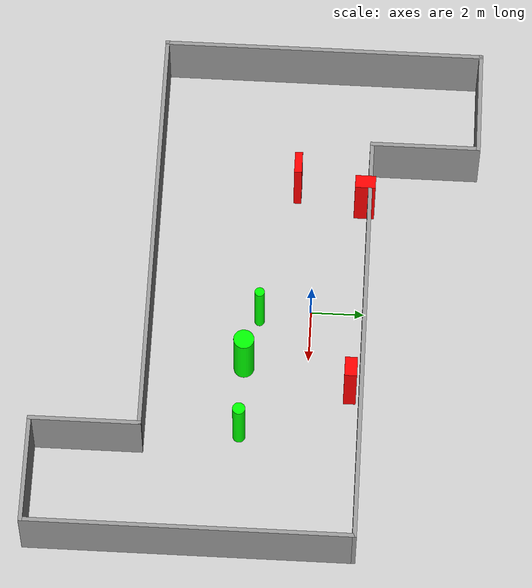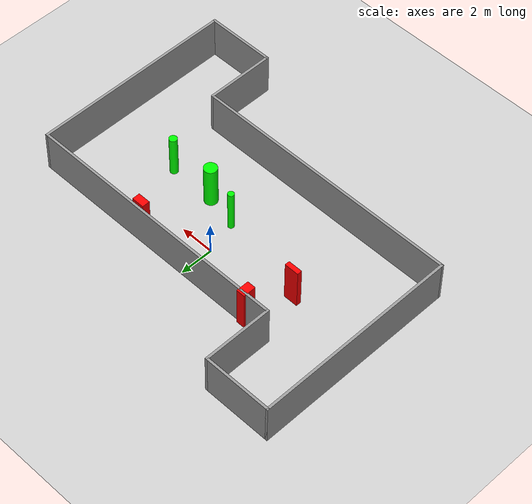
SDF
<sdf version="1.7">
 <world name="default">
  <light name="sun" type="directional">
   <pose>0 0 10 0 -0 0</pose>
   <diffuse>0.8 0.8 0.8 1</diffuse>
   <specular>0.2 0.2 0.2 1</specular>
   <attenuation>
    <range>1000</range>
    <constant>0.9</constant>
    <linear>0.01</linear>
    <quadratic>0.001</quadratic>
   </attenuation>
   <direction>-0.5 0.1 -0.9</direction>
   <spot><inner_angle>0</inner_angle><outer_angle>0</outer_angle><falloff>0</falloff></spot>
  </light>
  <model name="ground_plane">
   <static>1</static>
   <link name="link">
    <collision name="collision">
     <geometry><plane><normal>0 0 1</normal><size>100 100</size></plane></geometry>
     <surface>
      <contact><collide_bitmask>65535</collide_bitmask></contact>
      <friction><ode><mu>100</mu><mu2>50</mu2></ode></friction>
     </surface>
    </collision>
    <visual name="visual">
     <cast_shadows>0</cast_shadows>
     <geometry><plane><normal>0 0 1</normal><size>100 100</size></plane></geometry>
     <material>
      <script><uri>file://media/materials/scripts/gazebo.material</uri><name>Gazebo/Grey</name></script>
     </material>
    </visual>
   </link>
  </model>
  <gravity>0 0 -9.8</gravity>
  <magnetic_field>6e-06 2.3e-05 -4.2e-05</magnetic_field>
  <atmosphere type="adiabatic"/>
  <physics type="ode">
   <max_step_size>0.001</max_step_size>
   <real_time_factor>1</real_time_factor>
   <real_time_update_rate>1000</real_time_update_rate>
  </physics>
  <scene><ambient>0.4 0.4 0.4 1</ambient><background>0.7 0.7 0.7 1</background><shadows>1</shadows></scene>
  <spherical_coordinates>
   <surface_model>EARTH_WGS84</surface_model>
   <latitude_deg>0</latitude_deg>
   <longitude_deg>0</longitude_deg>
   <elevation>0</elevation>
   <heading_deg>0</heading_deg>
  </spherical_coordinates>
  <model name="my_base_walls">
   <link name="Wall_13">
    <collision name="Wall_13_Collision">
     <geometry><box><size>12.15 0.15 2.5</size></box></geometry>
     <pose>0 0 1.25 0 -0 0</pose>
    </collision>
    <visual name="Wall_13_Visual">
     <pose>0 0 1.25 0 -0 0</pose>
     <geometry><box><size>12.15 0.15 2.5</size></box></geometry>
     <material>
      <script><uri>file://media/materials/scripts/gazebo.material</uri><name>Gazebo/Grey</name></script>
      <ambient>1 1 1 1</ambient>
     </material>
     <meta><layer>0</layer></meta>
    </visual>
    <pose>10 -2 0 0 -0 1.5708</pose>
   </link>
   <link name="Wall_15">
    <collision name="Wall_15_Collision">
     <geometry><box><size>16.15 0.15 2.5</size></box></geometry>
     <pose>0 0 1.25 0 -0 0</pose>
    </collision>
    <visual name="Wall_15_Visual">
     <pose>0 0 1.25 0 -0 0</pose>
     <geometry><box><size>16.15 0.15 2.5</size></box></geometry>
     <material>
      <script><uri>file://media/materials/scripts/gazebo.material</uri><name>Gazebo/Grey</name></script>
      <ambient>1 1 1 1</ambient>
     </material>
     <meta><layer>0</layer></meta>
    </visual>
    <pose>2 4 0 0 -0 3.14159</pose>
   </link>
   <link name="Wall_17">
    <collision name="Wall_17_Collision">
     <geometry><box><size>4.15 0.15 2.5</size></box></geometry>
     <pose>0 0 1.25 0 -0 0</pose>
    </collision>
    <visual name="Wall_17_Visual">
     <pose>0 0 1.25 0 -0 0</pose>
     <geometry><box><size>4.15 0.15 2.5</size></box></geometry>
     <material>
      <script><uri>file://media/materials/scripts/gazebo.material</uri><name>Gazebo/Grey</name></script>
      <ambient>1 1 1 1</ambient>
     </material>
     <meta><layer>0</layer></meta>
    </visual>
    <pose>6 -6 0 0 -0 -1.5708</pose>
   </link>
   <link name="Wall_19">
    <collision name="Wall_19_Collision">
     <geometry><box><size>12.15 0.15 2.5</size></box></geometry>
     <pose>0 0 1.25 0 -0 0</pose>
    </collision>
    <visual name="Wall_19_Visual">
     <pose>0 0 1.25 0 -0 0</pose>
     <geometry><box><size>12.15 0.15 2.5</size></box></geometry>
     <material>
      <script><uri>file://media/materials/scripts/gazebo.material</uri><name>Gazebo/Grey</name></script>
      <ambient>1 1 1 1</ambient>
     </material>
     <meta><layer>0</layer></meta>
    </visual>
    <pose>-10 2 0 0 -0 1.5708</pose>
   </link>
   <link name="Wall_21">
    <collision name="Wall_21_Collision">
     <geometry><box><size>4.15 0.15 2.5</size></box></geometry>
     <pose>0 0 1.25 0 -0 0</pose>
    </collision>
    <visual name="Wall_21_Visual">
     <pose>0 0 1.25 0 -0 0</pose>
     <geometry><box><size>4.15 0.15 2.5</size></box></geometry>
     <material>
      <script><uri>file://media/materials/scripts/gazebo.material</uri><name>Gazebo/Grey</name></script>
      <ambient>1 1 1 1</ambient>
     </material>
     <meta><layer>0</layer></meta>
    </visual>
    <pose>-8 8 0 0 -0 0</pose>
   </link>
   <link name="Wall_23">
    <collision name="Wall_23_Collision">
     <geometry><box><size>4.15 0.15 2.5</size></box></geometry>
     <pose>0 0 1.25 0 -0 0</pose>
    </collision>
    <visual name="Wall_23_Visual">
     <pose>0 0 1.25 0 -0 0</pose>
     <geometry><box><size>4.15 0.15 2.5</size></box></geometry>
     <material>
      <script><uri>file://media/materials/scripts/gazebo.material</uri><name>Gazebo/Grey</name></script>
      <ambient>1 1 1 1</ambient>
     </material>
     <meta><layer>0</layer></meta>
    </visual>
    <pose>-6 6 0 0 -0 -1.5708</pose>
   </link>
   <link name="Wall_25">
    <collision name="Wall_25_Collision">
     <geometry><box><size>4.15 0.15 2.5</size></box></geometry>
     <pose>0 0 1.25 0 -0 0</pose>
    </collision>
    <visual name="Wall_25_Visual">
     <pose>0 0 1.25 0 -0 0</pose>
     <geometry><box><size>4.15 0.15 2.5</size></box></geometry>
     <material>
      <script><uri>file://media/materials/scripts/gazebo.material</uri><name>Gazebo/Grey</name></script>
      <ambient>1 1 1 1</ambient>
     </material>
     <meta><layer>0</layer></meta>
    </visual>
    <pose>8 -8 0 0 -0 0</pose>
   </link>
   <link name="Wall_9">
    <collision name="Wall_9_Collision">
     <geometry><box><size>16.15 0.15 2.5</size></box></geometry>
     <pose>0 0 1.25 0 -0 0</pose>
    </collision>
    <visual name="Wall_9_Visual">
     <pose>0 0 1.25 0 -0 0</pose>
     <geometry><box><size>16.15 0.15 2.5</size></box></geometry>
     <material>
      <script><uri>file://media/materials/scripts/gazebo.material</uri><name>Gazebo/Grey</name></script>
      <ambient>1 1 1 1</ambient>
     </material>
     <meta><layer>0</layer></meta>
    </visual>
    <pose>-2 -4 0 0 -0 3.14159</pose>
   </link>
   <static>1</static>
   <pose>-0 -2 0 0 -0 0</pose>
  </model>
  <model name="cylinder1">
   <static>1</static>
   <link name="link">
    <inertial>
     <mass>1</mass>
     <inertia><ixx>0.5</ixx><ixy>0</ixy><ixz>0</ixz><iyy>0.5</iyy><iyz>0</iyz><izz>1</izz></inertia>
    </inertial>
    <collision name="collision">
     <geometry><cylinder><radius>0.18345576652114293</radius><length>2.5</length></cylinder></geometry>
    </collision>
    <visual name="visual">
     <geometry><cylinder><radius>0.18345576652114293</radius><length>2.5</length></cylinder></geometry>
     <material>
      <ambient>0 1 0 1</ambient>
      <diffuse>0 1 0 1</diffuse>
      <specular>0.1 0.1 0.1 1</specular>
      <emissive>0 0 0 0</emissive>
     </material>
    </visual>
   </link>
   <pose>0.47279395372906485 -1.9088830260300798 1.25 0 0 0</pose>
  </model>
  <model name="cylinder2">
   <static>1</static>
   <link name="link">
    <inertial>
     <mass>1</mass>
     <inertia><ixx>0.5</ixx><ixy>0</ixy><ixz>0</ixz><iyy>0.5</iyy><iyz>0</iyz><izz>1</izz></inertia>
    </inertial>
    <collision name="collision">
     <geometry><cylinder><radius>0.383684305567928</radius><length>2.5</length></cylinder></geometry>
    </collision>
    <visual name="visual">
     <geometry><cylinder><radius>0.383684305567928</radius><length>2.5</length></cylinder></geometry>
     <material>
      <ambient>0 1 0 1</ambient>
      <diffuse>0 1 0 1</diffuse>
      <specular>0.1 0.1 0.1 1</specular>
      <emissive>0 0 0 0</emissive>
     </material>
    </visual>
   </link>
   <pose>2.439239085040505 -2.387445411020593 1.25 0 0 0</pose>
  </model>
  <model name="cylinder3">
   <static>1</static>
   <link name="link">
    <inertial>
     <mass>1</mass>
     <inertia><ixx>0.5</ixx><ixy>0</ixy><ixz>0</ixz><iyy>0.5</iyy><iyz>0</iyz><izz>1</izz></inertia>
    </inertial>
    <collision name="collision">
     <geometry><cylinder><radius>0.23536469768300983</radius><length>2.5</length></cylinder></geometry>
    </collision>
    <visual name="visual">
     <geometry><cylinder><radius>0.23536469768300983</radius><length>2.5</length></cylinder></geometry>
     <material>
      <ambient>0 1 0 1</ambient>
      <diffuse>0 1 0 1</diffuse>
      <specular>0.1 0.1 0.1 1</specular>
      <emissive>0 0 0 0</emissive>
     </material>
    </visual>
   </link>
   <pose>5.243372365320804 -2.4167152240836325 1.25 0 0 0</pose>
  </model>
  <model name="box1">
   <static>1</static>
   <link name="link">
    <inertial>
     <mass>1</mass>
     <inertia><ixx>0.083</ixx><ixy>0</ixy><ixz>0</ixz><iyy>0.083</iyy><iyz>0</iyz><izz>0.083</izz></inertia>
    </inertial>
    <collision name="collision">
     <geometry><box><size>0.8603557092789036 0.2880796385050418 2.5</size></box></geometry>
    </collision>
    <visual name="visual">
     <geometry><box><size>0.8603557092789036 0.2880796385050418 2.5</size></box></geometry>
     <material>
      <ambient>1 0 0 1</ambient>
      <diffuse>1 0 0 1</diffuse>
      <specular>0.1 0.1 0.1 1</specular>
      <emissive>0 0 0 0</emissive>
     </material>
    </visual>
    <sensor name="my_contact" type="contact">
     <contact><collision>box_collision</collision><topic>__default_topic__</topic></contact>
    </sensor>
   </link>
   <pose>-5.052854007912323 -0.7414268253761618 1.25 0 0 0</pose>
  </model>
  <model name="box2">
   <static>1</static>
   <link name="link">
    <inertial>
     <mass>1</mass>
     <inertia><ixx>0.083</ixx><ixy>0</ixy><ixz>0</ixz><iyy>0.083</iyy><iyz>0</iyz><izz>0.083</izz></inertia>
    </inertial>
    <collision name="collision">
     <geometry><box><size>0.7513079198932129 0.4613486701847332 2.5</size></box></geometry>
    </collision>
    <visual name="visual">
     <geometry><box><size>0.7513079198932129 0.4613486701847332 2.5</size></box></geometry>
     <material>
      <ambient>1 0 0 1</ambient>
      <diffuse>1 0 0 1</diffuse>
      <specular>0.1 0.1 0.1 1</specular>
      <emissive>0 0 0 0</emissive>
     </material>
    </visual>
    <sensor name="my_contact" type="contact">
     <contact><collision>box_collision</collision><topic>__default_topic__</topic></contact>
    </sensor>
   </link>
   <pose>3.3296347357255858 1.5933448419792766 1.25 0 0 0</pose>
  </model>
  <model name="box3">
   <static>1</static>
   <link name="link">
    <inertial>
     <mass>1</mass>
     <inertia><ixx>0.083</ixx><ixy>0</ixy><ixz>0</ixz><iyy>0.083</iyy><iyz>0</iyz><izz>0.083</izz></inertia>
    </inertial>
    <collision name="collision">
     <geometry><box><size>0.5125549219730258 0.7680342110115512 2.5</size></box></geometry>
    </collision>
    <visual name="visual">
     <geometry><box><size>0.5125549219730258 0.7680342110115512 2.5</size></box></geometry>
     <material>
      <ambient>1 0 0 1</ambient>
      <diffuse>1 0 0 1</diffuse>
      <specular>0.1 0.1 0.1 1</specular>
      <emissive>0 0 0 0</emissive>
     </material>
    </visual>
    <sensor name="my_contact" type="contact">
     <contact><collision>box_collision</collision><topic>__default_topic__</topic></contact>
    </sensor>
   </link>
   <pose>-4.36030322213097 1.8133264781805218 1.25 0 0 0</pose>
  </model>
 </world>
</sdf>
